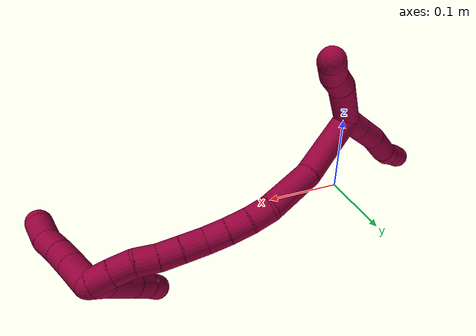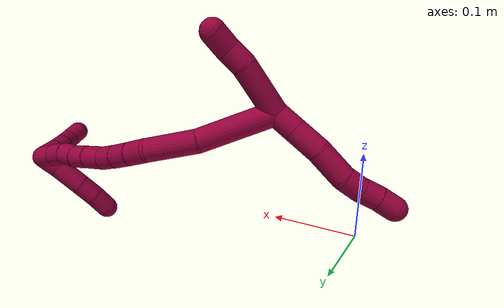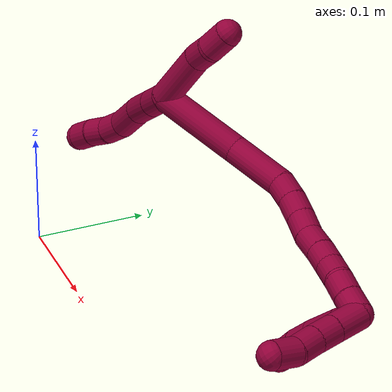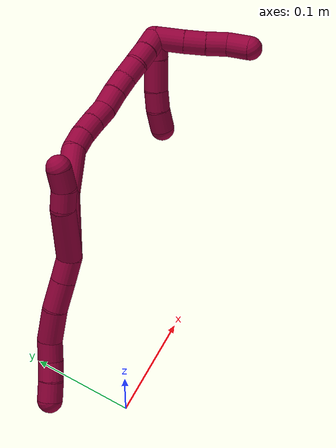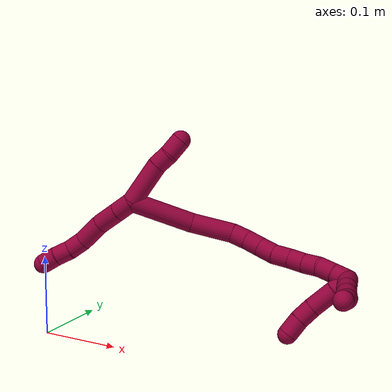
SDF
<sdf version="1.7">
 <world name="default">
  <model name="8">
   <static>0</static>
   <link name="8">
    <collision name="collision-cylinder-e_1_2_8">
     <pose>-0.008239 0.001186 -0.008762 -3.00702 -0.750154 2.80257</pose>
     <geometry><cylinder><radius>0.0125</radius><length>0.024171</length></cylinder></geometry>
     <surface>
      <friction><ode><mu>1.16</mu><mu2>1.16</mu2><slip1>0</slip1><slip2>0</slip2></ode></friction>
      <contact><ode><kp>1e+06</kp><kd>1</kd><max_vel>0</max_vel><min_depth>0.001</min_depth></ode></contact>
     </surface>
    </collision>
    <visual name="visual-cylinder-e_1_2_8">
     <pose>-0.008239 0.001186 -0.008762 -3.00702 -0.750154 2.80257</pose>
     <geometry><cylinder><radius>0.0125</radius><length>0.024171</length></cylinder></geometry>
     <material><ambient>0.584314 0 0.227451 1</ambient></material>
    </visual>
    <collision name="collision-cylinder-e_2_8_9">
     <pose>-0.027074 0.003933 -0.028468 -2.99993 -0.764142 2.79205</pose>
     <geometry><cylinder><radius>0.0125</radius><length>0.030626</length></cylinder></geometry>
     <surface>
      <friction><ode><mu>1.16</mu><mu2>1.16</mu2><slip1>0</slip1><slip2>0</slip2></ode></friction>
      <contact><ode><kp>1e+06</kp><kd>1</kd><max_vel>0</max_vel><min_depth>0.001</min_depth></ode></contact>
     </surface>
    </collision>
    <visual name="visual-cylinder-e_2_8_9">
     <pose>-0.027074 0.003933 -0.028468 -2.99993 -0.764142 2.79205</pose>
     <geometry><cylinder><radius>0.0125</radius><length>0.030626</length></cylinder></geometry>
     <material><ambient>0.584314 0 0.227451 1</ambient></material>
    </visual>
    <collision name="collision-cylinder-e_3_9_10">
     <pose>-0.047557 0.008728 -0.053153 -2.91046 -0.611039 2.43624</pose>
     <geometry><cylinder><radius>0.0125</radius><length>0.034468</length></cylinder></geometry>
     <surface>
      <friction><ode><mu>1.16</mu><mu2>1.16</mu2><slip1>0</slip1><slip2>0</slip2></ode></friction>
      <contact><ode><kp>1e+06</kp><kd>1</kd><max_vel>0</max_vel><min_depth>0.001</min_depth></ode></contact>
     </surface>
    </collision>
    <visual name="visual-cylinder-e_3_9_10">
     <pose>-0.047557 0.008728 -0.053153 -2.91046 -0.611039 2.43624</pose>
     <geometry><cylinder><radius>0.0125</radius><length>0.034468</length></cylinder></geometry>
     <material><ambient>0.584314 0 0.227451 1</ambient></material>
    </visual>
    <collision name="collision-cylinder-e_4_10_11">
     <pose>-0.062382 0.011482 -0.07599 3.08893 -0.496755 -2.93464</pose>
     <geometry><cylinder><radius>0.0125</radius><length>0.020724</length></cylinder></geometry>
     <surface>
      <friction><ode><mu>1.16</mu><mu2>1.16</mu2><slip1>0</slip1><slip2>0</slip2></ode></friction>
      <contact><ode><kp>1e+06</kp><kd>1</kd><max_vel>0</max_vel><min_depth>0.001</min_depth></ode></contact>
     </surface>
    </collision>
    <visual name="visual-cylinder-e_4_10_11">
     <pose>-0.062382 0.011482 -0.07599 3.08893 -0.496755 -2.93464</pose>
     <geometry><cylinder><radius>0.0125</radius><length>0.020724</length></cylinder></geometry>
     <material><ambient>0.584314 0 0.227451 1</ambient></material>
    </visual>
    <collision name="collision-cylinder-e_5_11_12">
     <pose>-0.072554 0.009039 -0.09338 2.90907 -0.550701 -2.35764</pose>
     <geometry><cylinder><radius>0.0125</radius><length>0.020002</length></cylinder></geometry>
     <surface>
      <friction><ode><mu>1.16</mu><mu2>1.16</mu2><slip1>0</slip1><slip2>0</slip2></ode></friction>
      <contact><ode><kp>1e+06</kp><kd>1</kd><max_vel>0</max_vel><min_depth>0.001</min_depth></ode></contact>
     </surface>
    </collision>
    <visual name="visual-cylinder-e_5_11_12">
     <pose>-0.072554 0.009039 -0.09338 2.90907 -0.550701 -2.35764</pose>
     <geometry><cylinder><radius>0.0125</radius><length>0.020002</length></cylinder></geometry>
     <material><ambient>0.584314 0 0.227451 1</ambient></material>
    </visual>
    <collision name="collision-cylinder-e_6_12_6">
     <pose>-0.0834 0.006291 -0.109918 3.04679 -0.595586 -2.83492</pose>
     <geometry><cylinder><radius>0.0125</radius><length>0.020009</length></cylinder></geometry>
     <surface>
      <friction><ode><mu>1.16</mu><mu2>1.16</mu2><slip1>0</slip1><slip2>0</slip2></ode></friction>
      <contact><ode><kp>1e+06</kp><kd>1</kd><max_vel>0</max_vel><min_depth>0.001</min_depth></ode></contact>
     </surface>
    </collision>
    <visual name="visual-cylinder-e_6_12_6">
     <pose>-0.0834 0.006291 -0.109918 3.04679 -0.595586 -2.83492</pose>
     <geometry><cylinder><radius>0.0125</radius><length>0.020009</length></cylinder></geometry>
     <material><ambient>0.584314 0 0.227451 1</ambient></material>
    </visual>
    <collision name="collision-cylinder-e_1_2_13">
     <pose>0.00868 -0.007452 0.025876 0.280388 0.311817 0.044356</pose>
     <geometry><cylinder><radius>0.0125</radius><length>0.056584</length></cylinder></geometry>
     <surface>
      <friction><ode><mu>1.16</mu><mu2>1.16</mu2><slip1>0</slip1><slip2>0</slip2></ode></friction>
      <contact><ode><kp>1e+06</kp><kd>1</kd><max_vel>0</max_vel><min_depth>0.001</min_depth></ode></contact>
     </surface>
    </collision>
    <visual name="visual-cylinder-e_1_2_13">
     <pose>0.00868 -0.007452 0.025876 0.280388 0.311817 0.044356</pose>
     <geometry><cylinder><radius>0.0125</radius><length>0.056584</length></cylinder></geometry>
     <material><ambient>0.584314 0 0.227451 1</ambient></material>
    </visual>
    <collision name="collision-cylinder-e_2_13_14">
     <pose>0.022642 -0.016117 0.060496 0.137945 0.539306 0.038182</pose>
     <geometry><cylinder><radius>0.0125</radius><length>0.020574</length></cylinder></geometry>
     <surface>
      <friction><ode><mu>1.16</mu><mu2>1.16</mu2><slip1>0</slip1><slip2>0</slip2></ode></friction>
      <contact><ode><kp>1e+06</kp><kd>1</kd><max_vel>0</max_vel><min_depth>0.001</min_depth></ode></contact>
     </surface>
    </collision>
    <visual name="visual-cylinder-e_2_13_14">
     <pose>0.022642 -0.016117 0.060496 0.137945 0.539306 0.038182</pose>
     <geometry><cylinder><radius>0.0125</radius><length>0.020574</length></cylinder></geometry>
     <material><ambient>0.584314 0 0.227451 1</ambient></material>
    </visual>
    <collision name="collision-cylinder-e_3_14_5">
     <pose>0.030764 -0.018779 0.080206 0.131289 0.251245 0.016604</pose>
     <geometry><cylinder><radius>0.0125</radius><length>0.022842</length></cylinder></geometry>
     <surface>
      <friction><ode><mu>1.16</mu><mu2>1.16</mu2><slip1>0</slip1><slip2>0</slip2></ode></friction>
      <contact><ode><kp>1e+06</kp><kd>1</kd><max_vel>0</max_vel><min_depth>0.001</min_depth></ode></contact>
     </surface>
    </collision>
    <visual name="visual-cylinder-e_3_14_5">
     <pose>0.030764 -0.018779 0.080206 0.131289 0.251245 0.016604</pose>
     <geometry><cylinder><radius>0.0125</radius><length>0.022842</length></cylinder></geometry>
     <material><ambient>0.584314 0 0.227451 1</ambient></material>
    </visual>
    <collision name="collision-cylinder-e_1_2_15">
     <pose>0.017642 0.033077 0.014468 -1.15847 0.454521 -0.30024</pose>
     <geometry><cylinder><radius>0.0125</radius><length>0.080365</length></cylinder></geometry>
     <surface>
      <friction><ode><mu>1.16</mu><mu2>1.16</mu2><slip1>0</slip1><slip2>0</slip2></ode></friction>
      <contact><ode><kp>1e+06</kp><kd>1</kd><max_vel>0</max_vel><min_depth>0.001</min_depth></ode></contact>
     </surface>
    </collision>
    <visual name="visual-cylinder-e_1_2_15">
     <pose>0.017642 0.033077 0.014468 -1.15847 0.454521 -0.30024</pose>
     <geometry><cylinder><radius>0.0125</radius><length>0.080365</length></cylinder></geometry>
     <material><ambient>0.584314 0 0.227451 1</ambient></material>
    </visual>
    <collision name="collision-cylinder-e_2_15_16">
     <pose>0.051312 0.085097 0.039572 -1.05915 0.635684 -0.380496</pose>
     <geometry><cylinder><radius>0.0125</radius><length>0.053995</length></cylinder></geometry>
     <surface>
      <friction><ode><mu>1.16</mu><mu2>1.16</mu2><slip1>0</slip1><slip2>0</slip2></ode></friction>
      <contact><ode><kp>1e+06</kp><kd>1</kd><max_vel>0</max_vel><min_depth>0.001</min_depth></ode></contact>
     </surface>
    </collision>
    <visual name="visual-cylinder-e_2_15_16">
     <pose>0.051312 0.085097 0.039572 -1.05915 0.635684 -0.380496</pose>
     <geometry><cylinder><radius>0.0125</radius><length>0.053995</length></cylinder></geometry>
     <material><ambient>0.584314 0 0.227451 1</ambient></material>
    </visual>
    <collision name="collision-cylinder-e_3_16_17">
     <pose>0.075312 0.110506 0.051734 -1.33922 0.875805 -0.709909</pose>
     <geometry><cylinder><radius>0.0125</radius><length>0.020754</length></cylinder></geometry>
     <surface>
      <friction><ode><mu>1.16</mu><mu2>1.16</mu2><slip1>0</slip1><slip2>0</slip2></ode></friction>
      <contact><ode><kp>1e+06</kp><kd>1</kd><max_vel>0</max_vel><min_depth>0.001</min_depth></ode></contact>
     </surface>
    </collision>
    <visual name="visual-cylinder-e_3_16_17">
     <pose>0.075312 0.110506 0.051734 -1.33922 0.875805 -0.709909</pose>
     <geometry><cylinder><radius>0.0125</radius><length>0.020754</length></cylinder></geometry>
     <material><ambient>0.584314 0 0.227451 1</ambient></material>
    </visual>
    <collision name="collision-cylinder-e_4_17_18">
     <pose>0.092022 0.122853 0.053884 -1.46486 0.976126 -0.890875</pose>
     <geometry><cylinder><radius>0.0125</radius><length>0.021104</length></cylinder></geometry>
     <surface>
      <friction><ode><mu>1.16</mu><mu2>1.16</mu2><slip1>0</slip1><slip2>0</slip2></ode></friction>
      <contact><ode><kp>1e+06</kp><kd>1</kd><max_vel>0</max_vel><min_depth>0.001</min_depth></ode></contact>
     </surface>
    </collision>
    <visual name="visual-cylinder-e_4_17_18">
     <pose>0.092022 0.122853 0.053884 -1.46486 0.976126 -0.890875</pose>
     <geometry><cylinder><radius>0.0125</radius><length>0.021104</length></cylinder></geometry>
     <material><ambient>0.584314 0 0.227451 1</ambient></material>
    </visual>
    <collision name="collision-cylinder-e_5_18_19">
     <pose>0.109822 0.13408 0.054985 -1.48213 1.03573 -0.961134</pose>
     <geometry><cylinder><radius>0.0125</radius><length>0.021063</length></cylinder></geometry>
     <surface>
      <friction><ode><mu>1.16</mu><mu2>1.16</mu2><slip1>0</slip1><slip2>0</slip2></ode></friction>
      <contact><ode><kp>1e+06</kp><kd>1</kd><max_vel>0</max_vel><min_depth>0.001</min_depth></ode></contact>
     </surface>
    </collision>
    <visual name="visual-cylinder-e_5_18_19">
     <pose>0.109822 0.13408 0.054985 -1.48213 1.03573 -0.961134</pose>
     <geometry><cylinder><radius>0.0125</radius><length>0.021063</length></cylinder></geometry>
     <material><ambient>0.584314 0 0.227451 1</ambient></material>
    </visual>
    <collision name="collision-cylinder-e_6_19_20">
     <pose>0.128459 0.144536 0.058187 -1.08035 1.02709 -0.652289</pose>
     <geometry><cylinder><radius>0.0125</radius><length>0.022382</length></cylinder></geometry>
     <surface>
      <friction><ode><mu>1.16</mu><mu2>1.16</mu2><slip1>0</slip1><slip2>0</slip2></ode></friction>
      <contact><ode><kp>1e+06</kp><kd>1</kd><max_vel>0</max_vel><min_depth>0.001</min_depth></ode></contact>
     </surface>
    </collision>
    <visual name="visual-cylinder-e_6_19_20">
     <pose>0.128459 0.144536 0.058187 -1.08035 1.02709 -0.652289</pose>
     <geometry><cylinder><radius>0.0125</radius><length>0.022382</length></cylinder></geometry>
     <material><ambient>0.584314 0 0.227451 1</ambient></material>
    </visual>
    <collision name="collision-cylinder-e_7_20_21">
     <pose>0.146786 0.154209 0.06275 -1.18844 1.0584 -0.752668</pose>
     <geometry><cylinder><radius>0.0125</radius><length>0.020079</length></cylinder></geometry>
     <surface>
      <friction><ode><mu>1.16</mu><mu2>1.16</mu2><slip1>0</slip1><slip2>0</slip2></ode></friction>
      <contact><ode><kp>1e+06</kp><kd>1</kd><max_vel>0</max_vel><min_depth>0.001</min_depth></ode></contact>
     </surface>
    </collision>
    <visual name="visual-cylinder-e_7_20_21">
     <pose>0.146786 0.154209 0.06275 -1.18844 1.0584 -0.752668</pose>
     <geometry><cylinder><radius>0.0125</radius><length>0.020079</length></cylinder></geometry>
     <material><ambient>0.584314 0 0.227451 1</ambient></material>
    </visual>
    <collision name="collision-cylinder-e_8_21_22">
     <pose>0.164857 0.162065 0.066717 -0.996044 1.17281 -0.693303</pose>
     <geometry><cylinder><radius>0.0125</radius><length>0.020222</length></cylinder></geometry>
     <surface>
      <friction><ode><mu>1.16</mu><mu2>1.16</mu2><slip1>0</slip1><slip2>0</slip2></ode></friction>
      <contact><ode><kp>1e+06</kp><kd>1</kd><max_vel>0</max_vel><min_depth>0.001</min_depth></ode></contact>
     </surface>
    </collision>
    <visual name="visual-cylinder-e_8_21_22">
     <pose>0.164857 0.162065 0.066717 -0.996044 1.17281 -0.693303</pose>
     <geometry><cylinder><radius>0.0125</radius><length>0.020222</length></cylinder></geometry>
     <material><ambient>0.584314 0 0.227451 1</ambient></material>
    </visual>
    <collision name="collision-cylinder-e_9_22_23">
     <pose>0.182645 0.17058 0.069948 -1.36317 1.00809 -0.841503</pose>
     <geometry><cylinder><radius>0.0125</radius><length>0.020023</length></cylinder></geometry>
     <surface>
      <friction><ode><mu>1.16</mu><mu2>1.16</mu2><slip1>0</slip1><slip2>0</slip2></ode></friction>
      <contact><ode><kp>1e+06</kp><kd>1</kd><max_vel>0</max_vel><min_depth>0.001</min_depth></ode></contact>
     </surface>
    </collision>
    <visual name="visual-cylinder-e_9_22_23">
     <pose>0.182645 0.17058 0.069948 -1.36317 1.00809 -0.841503</pose>
     <geometry><cylinder><radius>0.0125</radius><length>0.020023</length></cylinder></geometry>
     <material><ambient>0.584314 0 0.227451 1</ambient></material>
    </visual>
    <collision name="collision-cylinder-e_10_23_1">
     <pose>0.199243 0.181504 0.072303 -1.35426 0.948314 -0.782606</pose>
     <geometry><cylinder><radius>0.0125</radius><length>0.020013</length></cylinder></geometry>
     <surface>
      <friction><ode><mu>1.16</mu><mu2>1.16</mu2><slip1>0</slip1><slip2>0</slip2></ode></friction>
      <contact><ode><kp>1e+06</kp><kd>1</kd><max_vel>0</max_vel><min_depth>0.001</min_depth></ode></contact>
     </surface>
    </collision>
    <visual name="visual-cylinder-e_10_23_1">
     <pose>0.199243 0.181504 0.072303 -1.35426 0.948314 -0.782606</pose>
     <geometry><cylinder><radius>0.0125</radius><length>0.020013</length></cylinder></geometry>
     <material><ambient>0.584314 0 0.227451 1</ambient></material>
    </visual>
    <collision name="collision-cylinder-e_1_1_24">
     <pose>0.218815 0.181477 0.065263 2.53735 0.848731 1.93391</pose>
     <geometry><cylinder><radius>0.0125</radius><length>0.030494</length></cylinder></geometry>
     <surface>
      <friction><ode><mu>1.16</mu><mu2>1.16</mu2><slip1>0</slip1><slip2>0</slip2></ode></friction>
      <contact><ode><kp>1e+06</kp><kd>1</kd><max_vel>0</max_vel><min_depth>0.001</min_depth></ode></contact>
     </surface>
    </collision>
    <visual name="visual-cylinder-e_1_1_24">
     <pose>0.218815 0.181477 0.065263 2.53735 0.848731 1.93391</pose>
     <geometry><cylinder><radius>0.0125</radius><length>0.030494</length></cylinder></geometry>
     <material><ambient>0.584314 0 0.227451 1</ambient></material>
    </visual>
    <collision name="collision-cylinder-e_2_24_25">
     <pose>0.238974 0.171453 0.05115 2.50545 0.877972 1.91851</pose>
     <geometry><cylinder><radius>0.0125</radius><length>0.022658</length></cylinder></geometry>
     <surface>
      <friction><ode><mu>1.16</mu><mu2>1.16</mu2><slip1>0</slip1><slip2>0</slip2></ode></friction>
      <contact><ode><kp>1e+06</kp><kd>1</kd><max_vel>0</max_vel><min_depth>0.001</min_depth></ode></contact>
     </surface>
    </collision>
    <visual name="visual-cylinder-e_2_24_25">
     <pose>0.238974 0.171453 0.05115 2.50545 0.877972 1.91851</pose>
     <geometry><cylinder><radius>0.0125</radius><length>0.022658</length></cylinder></geometry>
     <material><ambient>0.584314 0 0.227451 1</ambient></material>
    </visual>
    <collision name="collision-cylinder-e_3_25_26">
     <pose>0.256841 0.163192 0.039848 2.51569 0.934282 2.00076</pose>
     <geometry><cylinder><radius>0.0125</radius><length>0.022757</length></cylinder></geometry>
     <surface>
      <friction><ode><mu>1.16</mu><mu2>1.16</mu2><slip1>0</slip1><slip2>0</slip2></ode></friction>
      <contact><ode><kp>1e+06</kp><kd>1</kd><max_vel>0</max_vel><min_depth>0.001</min_depth></ode></contact>
     </surface>
    </collision>
    <visual name="visual-cylinder-e_3_25_26">
     <pose>0.256841 0.163192 0.039848 2.51569 0.934282 2.00076</pose>
     <geometry><cylinder><radius>0.0125</radius><length>0.022757</length></cylinder></geometry>
     <material><ambient>0.584314 0 0.227451 1</ambient></material>
    </visual>
    <collision name="collision-cylinder-e_4_26_4">
     <pose>0.273775 0.151902 0.028816 2.21908 0.702558 1.27073</pose>
     <geometry><cylinder><radius>0.0125</radius><length>0.024091</length></cylinder></geometry>
     <surface>
      <friction><ode><mu>1.16</mu><mu2>1.16</mu2><slip1>0</slip1><slip2>0</slip2></ode></friction>
      <contact><ode><kp>1e+06</kp><kd>1</kd><max_vel>0</max_vel><min_depth>0.001</min_depth></ode></contact>
     </surface>
    </collision>
    <visual name="visual-cylinder-e_4_26_4">
     <pose>0.273775 0.151902 0.028816 2.21908 0.702558 1.27073</pose>
     <geometry><cylinder><radius>0.0125</radius><length>0.024091</length></cylinder></geometry>
     <material><ambient>0.584314 0 0.227451 1</ambient></material>
    </visual>
    <collision name="collision-cylinder-e_1_1_27">
     <pose>0.203031 0.187247 0.063866 -3.137 -0.421203 3.12011</pose>
     <geometry><cylinder><radius>0.0125</radius><length>0.021237</length></cylinder></geometry>
     <surface>
      <friction><ode><mu>1.16</mu><mu2>1.16</mu2><slip1>0</slip1><slip2>0</slip2></ode></friction>
      <contact><ode><kp>1e+06</kp><kd>1</kd><max_vel>0</max_vel><min_depth>0.001</min_depth></ode></contact>
     </surface>
    </collision>
    <visual name="visual-cylinder-e_1_1_27">
     <pose>0.203031 0.187247 0.063866 -3.137 -0.421203 3.12011</pose>
     <geometry><cylinder><radius>0.0125</radius><length>0.021237</length></cylinder></geometry>
     <material><ambient>0.584314 0 0.227451 1</ambient></material>
    </visual>
    <collision name="collision-cylinder-e_2_27_28">
     <pose>0.190557 0.188107 0.039343 -3.08666 -0.5009 2.92763</pose>
     <geometry><cylinder><radius>0.0125</radius><length>0.03387</length></cylinder></geometry>
     <surface>
      <friction><ode><mu>1.16</mu><mu2>1.16</mu2><slip1>0</slip1><slip2>0</slip2></ode></friction>
      <contact><ode><kp>1e+06</kp><kd>1</kd><max_vel>0</max_vel><min_depth>0.001</min_depth></ode></contact>
     </surface>
    </collision>
    <visual name="visual-cylinder-e_2_27_28">
     <pose>0.190557 0.188107 0.039343 -3.08666 -0.5009 2.92763</pose>
     <geometry><cylinder><radius>0.0125</radius><length>0.03387</length></cylinder></geometry>
     <material><ambient>0.584314 0 0.227451 1</ambient></material>
    </visual>
    <collision name="collision-cylinder-e_3_28_29">
     <pose>0.178236 0.189682 0.014541 -3.06557 -0.396679 2.76758</pose>
     <geometry><cylinder><radius>0.0125</radius><length>0.021682</length></cylinder></geometry>
     <surface>
      <friction><ode><mu>1.16</mu><mu2>1.16</mu2><slip1>0</slip1><slip2>0</slip2></ode></friction>
      <contact><ode><kp>1e+06</kp><kd>1</kd><max_vel>0</max_vel><min_depth>0.001</min_depth></ode></contact>
     </surface>
    </collision>
    <visual name="visual-cylinder-e_3_28_29">
     <pose>0.178236 0.189682 0.014541 -3.06557 -0.396679 2.76758</pose>
     <geometry><cylinder><radius>0.0125</radius><length>0.021682</length></cylinder></geometry>
     <material><ambient>0.584314 0 0.227451 1</ambient></material>
    </visual>
    <collision name="collision-cylinder-e_4_29_3">
     <pose>0.171273 0.192208 -0.006559 -2.98417 -0.241417 1.98849</pose>
     <geometry><cylinder><radius>0.0125</radius><length>0.023211</length></cylinder></geometry>
     <surface>
      <friction><ode><mu>1.16</mu><mu2>1.16</mu2><slip1>0</slip1><slip2>0</slip2></ode></friction>
      <contact><ode><kp>1e+06</kp><kd>1</kd><max_vel>0</max_vel><min_depth>0.001</min_depth></ode></contact>
     </surface>
    </collision>
    <visual name="visual-cylinder-e_4_29_3">
     <pose>0.171273 0.192208 -0.006559 -2.98417 -0.241417 1.98849</pose>
     <geometry><cylinder><radius>0.0125</radius><length>0.023211</length></cylinder></geometry>
     <material><ambient>0.584314 0 0.227451 1</ambient></material>
    </visual>
    <collision name="collision-sphere-3">
     <pose>0.168498 0.193975 -0.017688 0 -0 0</pose>
     <geometry><sphere><radius>0.0125</radius></sphere></geometry>
     <surface>
      <friction><ode><mu>1.16</mu><mu2>1.16</mu2><slip1>0</slip1><slip2>0</slip2></ode></friction>
      <contact><ode><kp>1e+06</kp><kd>1</kd><max_vel>0</max_vel><min_depth>0.001</min_depth></ode></contact>
     </surface>
    </collision>
    <visual name="visual-sphere-3">
     <pose>0.168498 0.193975 -0.017688 0 -0 0</pose>
     <geometry><sphere><radius>0.0125</radius></sphere></geometry>
     <material><ambient>0.584314 0 0.227451 1</ambient></material>
    </visual>
    <collision name="collision-sphere-29">
     <pose>0.174048 0.190441 0.004571 0 -0 0</pose>
     <geometry><sphere><radius>0.0125</radius></sphere></geometry>
     <surface>
      <friction><ode><mu>1.16</mu><mu2>1.16</mu2><slip1>0</slip1><slip2>0</slip2></ode></friction>
      <contact><ode><kp>1e+06</kp><kd>1</kd><max_vel>0</max_vel><min_depth>0.001</min_depth></ode></contact>
     </surface>
    </collision>
    <visual name="visual-sphere-29">
     <pose>0.174048 0.190441 0.004571 0 -0 0</pose>
     <geometry><sphere><radius>0.0125</radius></sphere></geometry>
     <material><ambient>0.584314 0 0.227451 1</ambient></material>
    </visual>
    <collision name="collision-sphere-28">
     <pose>0.182425 0.188922 0.024511 0 -0 0</pose>
     <geometry><sphere><radius>0.0125</radius></sphere></geometry>
     <surface>
      <friction><ode><mu>1.16</mu><mu2>1.16</mu2><slip1>0</slip1><slip2>0</slip2></ode></friction>
      <contact><ode><kp>1e+06</kp><kd>1</kd><max_vel>0</max_vel><min_depth>0.001</min_depth></ode></contact>
     </surface>
    </collision>
    <visual name="visual-sphere-28">
     <pose>0.182425 0.188922 0.024511 0 -0 0</pose>
     <geometry><sphere><radius>0.0125</radius></sphere></geometry>
     <material><ambient>0.584314 0 0.227451 1</ambient></material>
    </visual>
    <collision name="collision-sphere-27">
     <pose>0.19869 0.187291 0.054176 0 -0 0</pose>
     <geometry><sphere><radius>0.0125</radius></sphere></geometry>
     <surface>
      <friction><ode><mu>1.16</mu><mu2>1.16</mu2><slip1>0</slip1><slip2>0</slip2></ode></friction>
      <contact><ode><kp>1e+06</kp><kd>1</kd><max_vel>0</max_vel><min_depth>0.001</min_depth></ode></contact>
     </surface>
    </collision>
    <visual name="visual-sphere-27">
     <pose>0.19869 0.187291 0.054176 0 -0 0</pose>
     <geometry><sphere><radius>0.0125</radius></sphere></geometry>
     <material><ambient>0.584314 0 0.227451 1</ambient></material>
    </visual>
    <collision name="collision-sphere-4">
     <pose>0.281558 0.144574 0.023265 0 -0 0</pose>
     <geometry><sphere><radius>0.0125</radius></sphere></geometry>
     <surface>
      <friction><ode><mu>1.16</mu><mu2>1.16</mu2><slip1>0</slip1><slip2>0</slip2></ode></friction>
      <contact><ode><kp>1e+06</kp><kd>1</kd><max_vel>0</max_vel><min_depth>0.001</min_depth></ode></contact>
     </surface>
    </collision>
    <visual name="visual-sphere-4">
     <pose>0.281558 0.144574 0.023265 0 -0 0</pose>
     <geometry><sphere><radius>0.0125</radius></sphere></geometry>
     <material><ambient>0.584314 0 0.227451 1</ambient></material>
    </visual>
    <collision name="collision-sphere-26">
     <pose>0.265991 0.15923 0.034367 0 -0 0</pose>
     <geometry><sphere><radius>0.0125</radius></sphere></geometry>
     <surface>
      <friction><ode><mu>1.16</mu><mu2>1.16</mu2><slip1>0</slip1><slip2>0</slip2></ode></friction>
      <contact><ode><kp>1e+06</kp><kd>1</kd><max_vel>0</max_vel><min_depth>0.001</min_depth></ode></contact>
     </surface>
    </collision>
    <visual name="visual-sphere-26">
     <pose>0.265991 0.15923 0.034367 0 -0 0</pose>
     <geometry><sphere><radius>0.0125</radius></sphere></geometry>
     <material><ambient>0.584314 0 0.227451 1</ambient></material>
    </visual>
    <collision name="collision-sphere-25">
     <pose>0.247691 0.167154 0.045329 0 -0 0</pose>
     <geometry><sphere><radius>0.0125</radius></sphere></geometry>
     <surface>
      <friction><ode><mu>1.16</mu><mu2>1.16</mu2><slip1>0</slip1><slip2>0</slip2></ode></friction>
      <contact><ode><kp>1e+06</kp><kd>1</kd><max_vel>0</max_vel><min_depth>0.001</min_depth></ode></contact>
     </surface>
    </collision>
    <visual name="visual-sphere-25">
     <pose>0.247691 0.167154 0.045329 0 -0 0</pose>
     <geometry><sphere><radius>0.0125</radius></sphere></geometry>
     <material><ambient>0.584314 0 0.227451 1</ambient></material>
    </visual>
    <collision name="collision-sphere-24">
     <pose>0.230257 0.175752 0.05697 0 -0 0</pose>
     <geometry><sphere><radius>0.0125</radius></sphere></geometry>
     <surface>
      <friction><ode><mu>1.16</mu><mu2>1.16</mu2><slip1>0</slip1><slip2>0</slip2></ode></friction>
      <contact><ode><kp>1e+06</kp><kd>1</kd><max_vel>0</max_vel><min_depth>0.001</min_depth></ode></contact>
     </surface>
    </collision>
    <visual name="visual-sphere-24">
     <pose>0.230257 0.175752 0.05697 0 -0 0</pose>
     <geometry><sphere><radius>0.0125</radius></sphere></geometry>
     <material><ambient>0.584314 0 0.227451 1</ambient></material>
    </visual>
    <collision name="collision-sphere-1">
     <pose>0.207373 0.187202 0.073556 0 -0 0</pose>
     <geometry><sphere><radius>0.0125</radius></sphere></geometry>
     <surface>
      <friction><ode><mu>1.16</mu><mu2>1.16</mu2><slip1>0</slip1><slip2>0</slip2></ode></friction>
      <contact><ode><kp>1e+06</kp><kd>1</kd><max_vel>0</max_vel><min_depth>0.001</min_depth></ode></contact>
     </surface>
    </collision>
    <visual name="visual-sphere-1">
     <pose>0.207373 0.187202 0.073556 0 -0 0</pose>
     <geometry><sphere><radius>0.0125</radius></sphere></geometry>
     <material><ambient>0.584314 0 0.227451 1</ambient></material>
    </visual>
    <collision name="collision-sphere-23">
     <pose>0.191113 0.175806 0.071049 0 -0 0</pose>
     <geometry><sphere><radius>0.0125</radius></sphere></geometry>
     <surface>
      <friction><ode><mu>1.16</mu><mu2>1.16</mu2><slip1>0</slip1><slip2>0</slip2></ode></friction>
      <contact><ode><kp>1e+06</kp><kd>1</kd><max_vel>0</max_vel><min_depth>0.001</min_depth></ode></contact>
     </surface>
    </collision>
    <visual name="visual-sphere-23">
     <pose>0.191113 0.175806 0.071049 0 -0 0</pose>
     <geometry><sphere><radius>0.0125</radius></sphere></geometry>
     <material><ambient>0.584314 0 0.227451 1</ambient></material>
    </visual>
    <collision name="collision-sphere-22">
     <pose>0.174178 0.165354 0.068847 0 -0 0</pose>
     <geometry><sphere><radius>0.0125</radius></sphere></geometry>
     <surface>
      <friction><ode><mu>1.16</mu><mu2>1.16</mu2><slip1>0</slip1><slip2>0</slip2></ode></friction>
      <contact><ode><kp>1e+06</kp><kd>1</kd><max_vel>0</max_vel><min_depth>0.001</min_depth></ode></contact>
     </surface>
    </collision>
    <visual name="visual-sphere-22">
     <pose>0.174178 0.165354 0.068847 0 -0 0</pose>
     <geometry><sphere><radius>0.0125</radius></sphere></geometry>
     <material><ambient>0.584314 0 0.227451 1</ambient></material>
    </visual>
    <collision name="collision-sphere-21">
     <pose>0.155536 0.158776 0.064587 0 -0 0</pose>
     <geometry><sphere><radius>0.0125</radius></sphere></geometry>
     <surface>
      <friction><ode><mu>1.16</mu><mu2>1.16</mu2><slip1>0</slip1><slip2>0</slip2></ode></friction>
      <contact><ode><kp>1e+06</kp><kd>1</kd><max_vel>0</max_vel><min_depth>0.001</min_depth></ode></contact>
     </surface>
    </collision>
    <visual name="visual-sphere-21">
     <pose>0.155536 0.158776 0.064587 0 -0 0</pose>
     <geometry><sphere><radius>0.0125</radius></sphere></geometry>
     <material><ambient>0.584314 0 0.227451 1</ambient></material>
    </visual>
    <collision name="collision-sphere-12">
     <pose>-0.077787 0.007075 -0.101673 0 -0 0</pose>
     <geometry><sphere><radius>0.0125</radius></sphere></geometry>
     <surface>
      <friction><ode><mu>1.16</mu><mu2>1.16</mu2><slip1>0</slip1><slip2>0</slip2></ode></friction>
      <contact><ode><kp>1e+06</kp><kd>1</kd><max_vel>0</max_vel><min_depth>0.001</min_depth></ode></contact>
     </surface>
    </collision>
    <visual name="visual-sphere-12">
     <pose>-0.077787 0.007075 -0.101673 0 -0 0</pose>
     <geometry><sphere><radius>0.0125</radius></sphere></geometry>
     <material><ambient>0.584314 0 0.227451 1</ambient></material>
    </visual>
    <collision name="collision-sphere-11">
     <pose>-0.06732 0.011002 -0.085087 0 -0 0</pose>
     <geometry><sphere><radius>0.0125</radius></sphere></geometry>
     <surface>
      <friction><ode><mu>1.16</mu><mu2>1.16</mu2><slip1>0</slip1><slip2>0</slip2></ode></friction>
      <contact><ode><kp>1e+06</kp><kd>1</kd><max_vel>0</max_vel><min_depth>0.001</min_depth></ode></contact>
     </surface>
    </collision>
    <visual name="visual-sphere-11">
     <pose>-0.06732 0.011002 -0.085087 0 -0 0</pose>
     <geometry><sphere><radius>0.0125</radius></sphere></geometry>
     <material><ambient>0.584314 0 0.227451 1</ambient></material>
    </visual>
    <collision name="collision-sphere-10">
     <pose>-0.057444 0.011961 -0.066893 0 -0 0</pose>
     <geometry><sphere><radius>0.0125</radius></sphere></geometry>
     <surface>
      <friction><ode><mu>1.16</mu><mu2>1.16</mu2><slip1>0</slip1><slip2>0</slip2></ode></friction>
      <contact><ode><kp>1e+06</kp><kd>1</kd><max_vel>0</max_vel><min_depth>0.001</min_depth></ode></contact>
     </surface>
    </collision>
    <visual name="visual-sphere-10">
     <pose>-0.057444 0.011961 -0.066893 0 -0 0</pose>
     <geometry><sphere><radius>0.0125</radius></sphere></geometry>
     <material><ambient>0.584314 0 0.227451 1</ambient></material>
    </visual>
    <collision name="collision-sphere-9">
     <pose>-0.037669 0.005494 -0.039413 0 -0 0</pose>
     <geometry><sphere><radius>0.0125</radius></sphere></geometry>
     <surface>
      <friction><ode><mu>1.16</mu><mu2>1.16</mu2><slip1>0</slip1><slip2>0</slip2></ode></friction>
      <contact><ode><kp>1e+06</kp><kd>1</kd><max_vel>0</max_vel><min_depth>0.001</min_depth></ode></contact>
     </surface>
    </collision>
    <visual name="visual-sphere-9">
     <pose>-0.037669 0.005494 -0.039413 0 -0 0</pose>
     <geometry><sphere><radius>0.0125</radius></sphere></geometry>
     <material><ambient>0.584314 0 0.227451 1</ambient></material>
    </visual>
    <collision name="collision-sphere-2">
     <geometry><sphere><radius>0.0125</radius></sphere></geometry>
     <surface>
      <friction><ode><mu>1.16</mu><mu2>1.16</mu2><slip1>0</slip1><slip2>0</slip2></ode></friction>
      <contact><ode><kp>1e+06</kp><kd>1</kd><max_vel>0</max_vel><min_depth>0.001</min_depth></ode></contact>
     </surface>
    </collision>
    <visual name="visual-sphere-2">
     <geometry><sphere><radius>0.0125</radius></sphere></geometry>
     <material><ambient>0.584314 0 0.227451 1</ambient></material>
    </visual>
    <collision name="collision-sphere-19">
     <pose>0.118882 0.139429 0.05546 0 -0 0</pose>
     <geometry><sphere><radius>0.0125</radius></sphere></geometry>
     <surface>
      <friction><ode><mu>1.16</mu><mu2>1.16</mu2><slip1>0</slip1><slip2>0</slip2></ode></friction>
      <contact><ode><kp>1e+06</kp><kd>1</kd><max_vel>0</max_vel><min_depth>0.001</min_depth></ode></contact>
     </surface>
    </collision>
    <visual name="visual-sphere-19">
     <pose>0.118882 0.139429 0.05546 0 -0 0</pose>
     <geometry><sphere><radius>0.0125</radius></sphere></geometry>
     <material><ambient>0.584314 0 0.227451 1</ambient></material>
    </visual>
    <collision name="collision-sphere-8">
     <pose>-0.016479 0.002372 -0.017523 0 -0 0</pose>
     <geometry><sphere><radius>0.0125</radius></sphere></geometry>
     <surface>
      <friction><ode><mu>1.16</mu><mu2>1.16</mu2><slip1>0</slip1><slip2>0</slip2></ode></friction>
      <contact><ode><kp>1e+06</kp><kd>1</kd><max_vel>0</max_vel><min_depth>0.001</min_depth></ode></contact>
     </surface>
    </collision>
    <visual name="visual-sphere-8">
     <pose>-0.016479 0.002372 -0.017523 0 -0 0</pose>
     <geometry><sphere><radius>0.0125</radius></sphere></geometry>
     <material><ambient>0.584314 0 0.227451 1</ambient></material>
    </visual>
    <collision name="collision-sphere-6">
     <pose>-0.089012 0.005507 -0.118163 0 -0 0</pose>
     <geometry><sphere><radius>0.0125</radius></sphere></geometry>
     <surface>
      <friction><ode><mu>1.16</mu><mu2>1.16</mu2><slip1>0</slip1><slip2>0</slip2></ode></friction>
      <contact><ode><kp>1e+06</kp><kd>1</kd><max_vel>0</max_vel><min_depth>0.001</min_depth></ode></contact>
     </surface>
    </collision>
    <visual name="visual-sphere-6">
     <pose>-0.089012 0.005507 -0.118163 0 -0 0</pose>
     <geometry><sphere><radius>0.0125</radius></sphere></geometry>
     <material><ambient>0.584314 0 0.227451 1</ambient></material>
    </visual>
    <collision name="collision-sphere-13">
     <pose>0.017359 -0.014903 0.051752 0 -0 0</pose>
     <geometry><sphere><radius>0.0125</radius></sphere></geometry>
     <surface>
      <friction><ode><mu>1.16</mu><mu2>1.16</mu2><slip1>0</slip1><slip2>0</slip2></ode></friction>
      <contact><ode><kp>1e+06</kp><kd>1</kd><max_vel>0</max_vel><min_depth>0.001</min_depth></ode></contact>
     </surface>
    </collision>
    <visual name="visual-sphere-13">
     <pose>0.017359 -0.014903 0.051752 0 -0 0</pose>
     <geometry><sphere><radius>0.0125</radius></sphere></geometry>
     <material><ambient>0.584314 0 0.227451 1</ambient></material>
    </visual>
    <collision name="collision-sphere-14">
     <pose>0.027925 -0.017331 0.069239 0 -0 0</pose>
     <geometry><sphere><radius>0.0125</radius></sphere></geometry>
     <surface>
      <friction><ode><mu>1.16</mu><mu2>1.16</mu2><slip1>0</slip1><slip2>0</slip2></ode></friction>
      <contact><ode><kp>1e+06</kp><kd>1</kd><max_vel>0</max_vel><min_depth>0.001</min_depth></ode></contact>
     </surface>
    </collision>
    <visual name="visual-sphere-14">
     <pose>0.027925 -0.017331 0.069239 0 -0 0</pose>
     <geometry><sphere><radius>0.0125</radius></sphere></geometry>
     <material><ambient>0.584314 0 0.227451 1</ambient></material>
    </visual>
    <collision name="collision-sphere-5">
     <pose>0.033604 -0.020227 0.091173 0 -0 0</pose>
     <geometry><sphere><radius>0.0125</radius></sphere></geometry>
     <surface>
      <friction><ode><mu>1.16</mu><mu2>1.16</mu2><slip1>0</slip1><slip2>0</slip2></ode></friction>
      <contact><ode><kp>1e+06</kp><kd>1</kd><max_vel>0</max_vel><min_depth>0.001</min_depth></ode></contact>
     </surface>
    </collision>
    <visual name="visual-sphere-5">
     <pose>0.033604 -0.020227 0.091173 0 -0 0</pose>
     <geometry><sphere><radius>0.0125</radius></sphere></geometry>
     <material><ambient>0.584314 0 0.227451 1</ambient></material>
    </visual>
    <collision name="collision-sphere-15">
     <pose>0.035283 0.066154 0.028936 0 -0 0</pose>
     <geometry><sphere><radius>0.0125</radius></sphere></geometry>
     <surface>
      <friction><ode><mu>1.16</mu><mu2>1.16</mu2><slip1>0</slip1><slip2>0</slip2></ode></friction>
      <contact><ode><kp>1e+06</kp><kd>1</kd><max_vel>0</max_vel><min_depth>0.001</min_depth></ode></contact>
     </surface>
    </collision>
    <visual name="visual-sphere-15">
     <pose>0.035283 0.066154 0.028936 0 -0 0</pose>
     <geometry><sphere><radius>0.0125</radius></sphere></geometry>
     <material><ambient>0.584314 0 0.227451 1</ambient></material>
    </visual>
    <collision name="collision-sphere-16">
     <pose>0.067341 0.104039 0.050209 0 -0 0</pose>
     <geometry><sphere><radius>0.0125</radius></sphere></geometry>
     <surface>
      <friction><ode><mu>1.16</mu><mu2>1.16</mu2><slip1>0</slip1><slip2>0</slip2></ode></friction>
      <contact><ode><kp>1e+06</kp><kd>1</kd><max_vel>0</max_vel><min_depth>0.001</min_depth></ode></contact>
     </surface>
    </collision>
    <visual name="visual-sphere-16">
     <pose>0.067341 0.104039 0.050209 0 -0 0</pose>
     <geometry><sphere><radius>0.0125</radius></sphere></geometry>
     <material><ambient>0.584314 0 0.227451 1</ambient></material>
    </visual>
    <collision name="collision-sphere-17">
     <pose>0.083282 0.116974 0.053259 0 -0 0</pose>
     <geometry><sphere><radius>0.0125</radius></sphere></geometry>
     <surface>
      <friction><ode><mu>1.16</mu><mu2>1.16</mu2><slip1>0</slip1><slip2>0</slip2></ode></friction>
      <contact><ode><kp>1e+06</kp><kd>1</kd><max_vel>0</max_vel><min_depth>0.001</min_depth></ode></contact>
     </surface>
    </collision>
    <visual name="visual-sphere-17">
     <pose>0.083282 0.116974 0.053259 0 -0 0</pose>
     <geometry><sphere><radius>0.0125</radius></sphere></geometry>
     <material><ambient>0.584314 0 0.227451 1</ambient></material>
    </visual>
    <collision name="collision-sphere-18">
     <pose>0.100763 0.128731 0.054509 0 -0 0</pose>
     <geometry><sphere><radius>0.0125</radius></sphere></geometry>
     <surface>
      <friction><ode><mu>1.16</mu><mu2>1.16</mu2><slip1>0</slip1><slip2>0</slip2></ode></friction>
      <contact><ode><kp>1e+06</kp><kd>1</kd><max_vel>0</max_vel><min_depth>0.001</min_depth></ode></contact>
     </surface>
    </collision>
    <visual name="visual-sphere-18">
     <pose>0.100763 0.128731 0.054509 0 -0 0</pose>
     <geometry><sphere><radius>0.0125</radius></sphere></geometry>
     <material><ambient>0.584314 0 0.227451 1</ambient></material>
    </visual>
    <collision name="collision-sphere-20">
     <pose>0.138036 0.149642 0.060914 0 -0 0</pose>
     <geometry><sphere><radius>0.0125</radius></sphere></geometry>
     <surface>
      <friction><ode><mu>1.16</mu><mu2>1.16</mu2><slip1>0</slip1><slip2>0</slip2></ode></friction>
      <contact><ode><kp>1e+06</kp><kd>1</kd><max_vel>0</max_vel><min_depth>0.001</min_depth></ode></contact>
     </surface>
    </collision>
    <visual name="visual-sphere-20">
     <pose>0.138036 0.149642 0.060914 0 -0 0</pose>
     <geometry><sphere><radius>0.0125</radius></sphere></geometry>
     <material><ambient>0.584314 0 0.227451 1</ambient></material>
    </visual>
    <inertial>
     <pose>0.086027 0.089528 0.022684 0 -0 0</pose>
     <mass>0.75</mass>
     <inertia><ixx>6.2e-05</ixx><ixy>0</ixy><ixz>0</ixz><iyy>9.2e-05</iyy><iyz>0</iyz><izz>-9.6e-05</izz></inertia>
    </inertial>
   </link>
   <pose>0.065305 0.097875 0.156782 -0.864339 -0.092257 -0.475126</pose>
  </model>
 </world>
</sdf>
